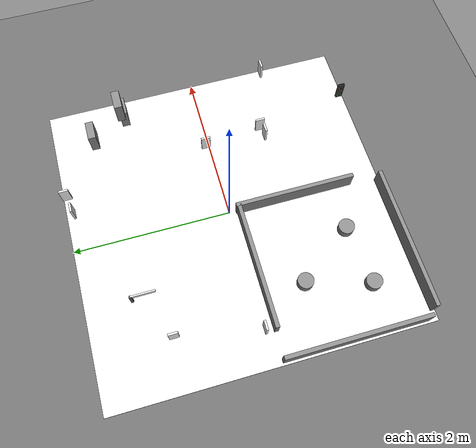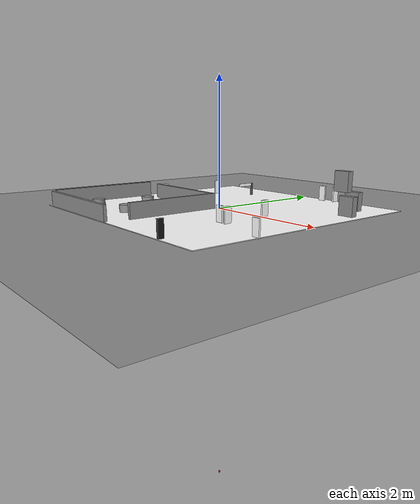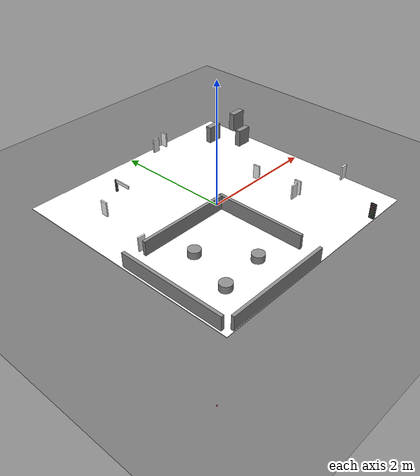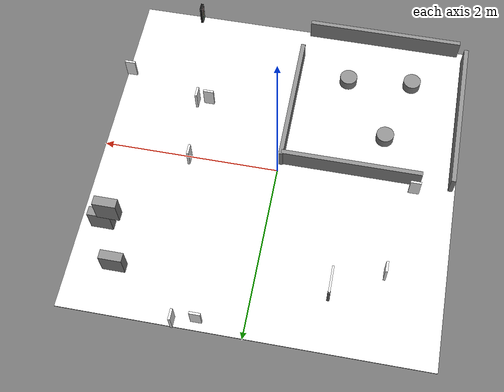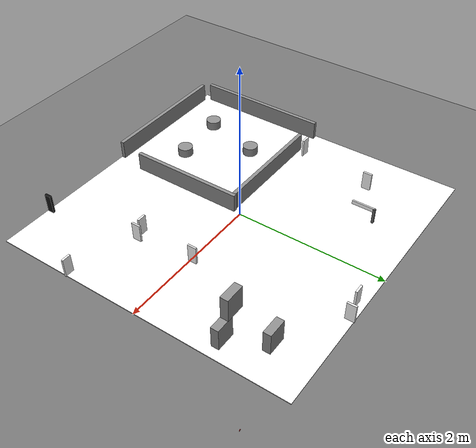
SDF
<?xml version="1.0" ?>
<!-- AutoRace 2023 course for Gazebo Harmonic (gz-sim 8).
     Generated from turtlebot3_autorace_2020.world; do not edit by hand,
     see autorace_sim/scripts/gen_world.py. -->
<sdf version="1.10">
  <world name="autorace">

    <physics name="1ms" type="ignored">
      <max_step_size>0.001</max_step_size>
      <real_time_factor>1.0</real_time_factor>
    </physics>

    <plugin filename="gz-sim-physics-system"
            name="gz::sim::systems::Physics"/>
    <plugin filename="gz-sim-user-commands-system"
            name="gz::sim::systems::UserCommands"/>
    <plugin filename="gz-sim-scene-broadcaster-system"
            name="gz::sim::systems::SceneBroadcaster"/>
    <plugin filename="gz-sim-sensors-system"
            name="gz::sim::systems::Sensors">
      <render_engine>ogre2</render_engine>
    </plugin>
    <plugin filename="gz-sim-contact-system"
            name="gz::sim::systems::Contact"/>
    <plugin filename="gz-sim-imu-system"
            name="gz::sim::systems::Imu"/>

    <scene>
      <ambient>0.85 0.85 0.85 1</ambient>
      <background>0.7 0.7 0.7 1</background>
      <shadows>false</shadows>
      <grid>false</grid>
    </scene>

    <light type="directional" name="sun">
      <cast_shadows>false</cast_shadows>
      <pose>0 0 10 0 0 0</pose>
      <diffuse>0.9 0.9 0.9 1</diffuse>
      <specular>0.2 0.2 0.2 1</specular>
      <direction>-0.3 0.2 -0.9</direction>
    </light>

    <model name="ground_plane">
      <static>true</static>
      <link name="link">
        <collision name="collision">
          <geometry><plane><normal>0 0 1</normal><size>20 20</size></plane></geometry>
        </collision>
        <visual name="visual">
          <geometry><plane><normal>0 0 1</normal><size>20 20</size></plane></geometry>
          <material>
            <ambient>0.3 0.3 0.3 1</ambient>
            <diffuse>0.35 0.35 0.35 1</diffuse>
          </material>
        </visual>
      </link>
    </model>

    <!-- course -->
    <include>
      <uri>model://autorace_course</uri>
      <name>autorace_course</name>
      <pose>0 0 0 0 0 -3.14</pose>
    </include>
    <!-- traffic_bar -->
    <include>
      <uri>model://autorace_level_bar</uri>
      <name>autorace_level_bar</name>
      <pose>-0.8 1.26 0 0 0 -1.57</pose>
    </include>
    <!-- traffic_light -->
    <include>
      <uri>model://autorace_traffic_light</uri>
      <name>autorace_traffic_light</name>
      <pose>1.3 -1.95 0.13 0 0 -1.57</pose>
    </include>
    <!-- traffic_parking -->
    <include>
      <uri>model://autorace_sign_parking</uri>
      <name>autorace_sign_parking</name>
      <pose>0.74 1.95 0.13 0 0 -1.57</pose>
    </include>
    <!-- traffic_tunnel -->
    <include>
      <uri>model://autorace_sign_tunnel</uri>
      <name>autorace_sign_tunnel</name>
      <pose>-1.544 0.00 0.125 0 0 0</pose>
    </include>
    <!-- traffic_stop -->
    <include>
      <uri>model://autorace_sign_stop</uri>
      <name>autorace_sign_stop</name>
      <pose>-1.35 1.04 0.125 0 -0 -1.57</pose>
    </include>
    <!-- traffic_pl_left -->
    <include>
      <uri>model://autorace_sign_pl_left</uri>
      <name>autorace_sign_pl_left</name>
      <pose>0.50 1.90 0.13 0 0 0</pose>
    </include>
    <!-- traffic_construction -->
    <include>
      <uri>model://autorace_sign_construction</uri>
      <name>autorace_sign_construction</name>
      <pose>1.0 0.04 0.125 0 -0 -1.57</pose>
    </include>
    <!-- traffic_intersection -->
    <include>
      <uri>model://autorace_sign_intersection</uri>
      <name>autorace_sign_intersection</name>
      <pose>1.95 -1.0 0.125 0 -0 0.0</pose>
    </include>
    <!-- traffic_noentry -->
    <include>
      <uri>model://autorace_sign_noentry</uri>
      <name>autorace_sign_noentry</name>
      <pose>0.95 -0.758 0.125 0 -0 0.0</pose>
    </include>
    <!-- traffic_right -->
    <include>
      <uri>model://autorace_sign_right</uri>
      <name>autorace_sign_right</name>
      <pose>1.08 -0.728 0.125 0 -0 -1.57</pose>
    </include>

    <include>
      <uri>model://autorace_lamp_red</uri>
      <name>autorace_lamp_red</name>
      <pose>0 0 -5 0 0 0</pose>
    </include>
    <include>
      <uri>model://autorace_lamp_yellow</uri>
      <name>autorace_lamp_yellow</name>
      <pose>0 0 -5 0 0 0</pose>
    </include>
    <include>
      <uri>model://autorace_lamp_green</uri>
      <name>autorace_lamp_green</name>
      <pose>0 0 -5 0 0 0</pose>
    </include>

    <model name="tunnel_wall">
      <static>true</static>
      <pose>-0.964699 -1.03574 0 0 -0 0</pose>
      <link name="Wall_1">
        <pose>-0.980783 0.049883 0 0 -0 1.5708</pose>
        <collision name="Wall_1_collision">
          <pose>0 0 0.125 0 -0 0</pose>
          <geometry><box><size>1.8 0.05 0.25</size></box></geometry>
        </collision>
        <visual name="Wall_1_visual">
          <pose>0 0 0.125 0 -0 0</pose>
          <geometry><box><size>1.8 0.05 0.25</size></box></geometry>
          <material>
            <ambient>0.25 0.25 0.25 1</ambient>
            <diffuse>0.55 0.55 0.55 1</diffuse>
            <specular>0.05 0.05 0.05 1</specular>
          </material>
        </visual>
      </link>
      <link name="Wall_2">
        <pose>0 -0.935438 0 0 -0 0</pose>
        <collision name="Wall_2_collision">
          <pose>0 0 0.125 0 -0 0</pose>
          <geometry><box><size>1.8 0.05 0.25</size></box></geometry>
        </collision>
        <visual name="Wall_2_visual">
          <pose>0 0 0.125 0 -0 0</pose>
          <geometry><box><size>1.8 0.05 0.25</size></box></geometry>
          <material>
            <ambient>0.25 0.25 0.25 1</ambient>
            <diffuse>0.55 0.55 0.55 1</diffuse>
            <specular>0.05 0.05 0.05 1</specular>
          </material>
        </visual>
      </link>
      <link name="Wall_3">
        <pose>0.943396 0.183669 0 0 -0 1.5708</pose>
        <collision name="Wall_3_collision">
          <pose>0 0 0.125 0 -0 0</pose>
          <geometry><box><size>1.53699 0.05 0.25</size></box></geometry>
        </collision>
        <visual name="Wall_3_visual">
          <pose>0 0 0.125 0 -0 0</pose>
          <geometry><box><size>1.53699 0.05 0.25</size></box></geometry>
          <material>
            <ambient>0.25 0.25 0.25 1</ambient>
            <diffuse>0.55 0.55 0.55 1</diffuse>
            <specular>0.05 0.05 0.05 1</specular>
          </material>
        </visual>
      </link>
      <link name="Wall_4">
        <pose>0.15 0.915 0 0 -0 3.14159</pose>
        <collision name="Wall_4_collision">
          <pose>0 0 0.125 0 -0 0</pose>
          <geometry><box><size>1.58 0.05 0.25</size></box></geometry>
        </collision>
        <visual name="Wall_4_visual">
          <pose>0 0 0.125 0 -0 0</pose>
          <geometry><box><size>1.58 0.05 0.25</size></box></geometry>
          <material>
            <ambient>0.25 0.25 0.25 1</ambient>
            <diffuse>0.55 0.55 0.55 1</diffuse>
            <specular>0.05 0.05 0.05 1</specular>
          </material>
        </visual>
      </link>
    </model>
    <model name="tunnel_obstacle">
      <static>true</static>
      <pose>-1.04145 -1.12671 0 0 -0 0</pose>
      <link name="obstacle_1">
        <pose>0.42322 -0.212034 0.0 0 -0 0</pose>
        <collision name="obstacle_1_collision">
          <pose>0 0 0 0 -0 0</pose>
          <geometry><cylinder><radius>0.1</radius><length>0.25</length></cylinder></geometry>
        </collision>
        <visual name="obstacle_1_visual">
          <pose>0 0 0 0 -0 0</pose>
          <geometry><cylinder><radius>0.1</radius><length>0.25</length></cylinder></geometry>
          <material>
            <ambient>0.25 0.25 0.25 1</ambient>
            <diffuse>0.55 0.55 0.55 1</diffuse>
            <specular>0.05 0.05 0.05 1</specular>
          </material>
        </visual>
      </link>
      <link name="obstacle_2">
        <pose>-0.323729 -0.287563 0.0 0 -0 0</pose>
        <collision name="obstacle_2_collision">
          <pose>0 0 0 0 -0 0</pose>
          <geometry><cylinder><radius>0.1</radius><length>0.25</length></cylinder></geometry>
        </collision>
        <visual name="obstacle_2_visual">
          <pose>0 0 0 0 -0 0</pose>
          <geometry><cylinder><radius>0.1</radius><length>0.25</length></cylinder></geometry>
          <material>
            <ambient>0.25 0.25 0.25 1</ambient>
            <diffuse>0.55 0.55 0.55 1</diffuse>
            <specular>0.05 0.05 0.05 1</specular>
          </material>
        </visual>
      </link>
      <link name="obstacle_3">
        <pose>-0.099492 0.499594 0.0 0 -0 0</pose>
        <collision name="obstacle_3_collision">
          <pose>0 0 0 0 -0 0</pose>
          <geometry><cylinder><radius>0.1</radius><length>0.25</length></cylinder></geometry>
        </collision>
        <visual name="obstacle_3_visual">
          <pose>0 0 0 0 -0 0</pose>
          <geometry><cylinder><radius>0.1</radius><length>0.25</length></cylinder></geometry>
          <material>
            <ambient>0.25 0.25 0.25 1</ambient>
            <diffuse>0.55 0.55 0.55 1</diffuse>
            <specular>0.05 0.05 0.05 1</specular>
          </material>
        </visual>
      </link>
    </model>
    <model name="barrier_1">
      <static>true</static>
      <pose>1.61222 1.02778 0.5 0 -0 0</pose>
      <link name="link">
        <pose>0 0 0 0 -0 0</pose>
        <collision name="link_collision">
          <pose>0 0 0 0 -0 0</pose>
          <geometry><box><size>0.25 0.1 0.3</size></box></geometry>
        </collision>
        <visual name="link_visual">
          <pose>0 0 0 0 -0 0</pose>
          <geometry><box><size>0.25 0.1 0.3</size></box></geometry>
          <material>
            <ambient>0.25 0.25 0.25 1</ambient>
            <diffuse>0.55 0.55 0.55 1</diffuse>
            <specular>0.05 0.05 0.05 1</specular>
          </material>
        </visual>
      </link>
    </model>
    <model name="barrier_2">
      <static>true</static>
      <pose>1.74483 0.998451 0.15 0 -0 0</pose>
      <link name="link">
        <pose>0 0 0 0 -0 0</pose>
        <collision name="link_collision">
          <pose>0 0 0 0 -0 0</pose>
          <geometry><box><size>0.25 0.1 0.3</size></box></geometry>
        </collision>
        <visual name="link_visual">
          <pose>0 0 0 0 -0 0</pose>
          <geometry><box><size>0.25 0.1 0.3</size></box></geometry>
          <material>
            <ambient>0.25 0.25 0.25 1</ambient>
            <diffuse>0.55 0.55 0.55 1</diffuse>
            <specular>0.05 0.05 0.05 1</specular>
          </material>
        </visual>
      </link>
    </model>
    <model name="barrier_3">
      <static>true</static>
      <pose>1.49021 1.46167 0.15 0 -0 0</pose>
      <link name="link">
        <pose>0 0 0 0 -0 0</pose>
        <collision name="link_collision">
          <pose>0 0 0 0 -0 0</pose>
          <geometry><box><size>0.25 0.1 0.3</size></box></geometry>
        </collision>
        <visual name="link_visual">
          <pose>0 0 0 0 -0 0</pose>
          <geometry><box><size>0.25 0.1 0.3</size></box></geometry>
          <material>
            <ambient>0.25 0.25 0.25 1</ambient>
            <diffuse>0.55 0.55 0.55 1</diffuse>
            <specular>0.05 0.05 0.05 1</specular>
          </material>
        </visual>
      </link>
    </model>

  </world>
</sdf>

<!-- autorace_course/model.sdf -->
<sdf version="1.10">
  <model name="autorace_course">
    <static>true</static>
    <link name="course_link">
      <collision name="course_collision">
        <pose>0 0 0.005 0 0 0</pose>
        <geometry>
          <box><size>4 4 0.01</size></box>
        </geometry>
        <surface>
          <friction>
            <ode>
              <mu>100</mu>
              <mu2>50</mu2>
            </ode>
          </friction>
        </surface>
      </collision>
      <visual name="course_visual">
        <pose>0 0 0.005 0 0 0</pose>
        <cast_shadows>false</cast_shadows>
        <geometry>
	        <box><size>4 4 0.01</size></box>
        </geometry>
	              <material>
          <diffuse>1 1 1 1</diffuse>
          <specular>0.1 0.1 0.1 1</specular>
          <pbr>
            <metal>
              <albedo_map>model://autorace_course/materials/textures/course.png</albedo_map>
              <metalness>0.0</metalness>
              <roughness>0.9</roughness>
            </metal>
          </pbr>
        </material>
      </visual>
    </link>
  </model>
</sdf>

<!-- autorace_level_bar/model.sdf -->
<sdf version="1.10">
  <model name="autorace_level_bar">
    <link name="post">
      <pose>-0.16 0 0.11 0 0 0</pose>
      <collision name="collision">
        <geometry><box><size>0.03 0.03 0.22</size></box></geometry>
      </collision>
      <visual name="visual">
        <geometry><box><size>0.03 0.03 0.22</size></box></geometry>
        <material>
          <ambient>0.3 0.3 0.3 1</ambient>
          <diffuse>0.4 0.4 0.4 1</diffuse>
        </material>
      </visual>
    </link>

    <joint name="post_fixed" type="fixed">
      <parent>world</parent>
      <child>post</child>
    </joint>

    <link name="bar">
      <!-- Link origin sits on the hinge; the bar itself extends towards +x. -->
      <pose>-0.16 0 0.2 0 0 0</pose>
      <inertial>
        <pose>0.15 0 0 0 0 0</pose>
        <mass>0.05</mass>
        <inertia><ixx>1e-4</ixx><iyy>1e-3</iyy><izz>1e-3</izz>
          <ixy>0</ixy><ixz>0</ixz><iyz>0</iyz></inertia>
      </inertial>
      <collision name="collision">
        <pose>0.15 0 0 0 0 0</pose>
        <geometry><box><size>0.3 0.02 0.05</size></box></geometry>
      </collision>
      <visual name="visual">
        <pose>0.15 0 0 0 0 0</pose>
        <geometry><box><size>0.3 0.02 0.05</size></box></geometry>
        <material>
          <diffuse>1 1 1 1</diffuse>
          <pbr>
            <metal>
              <albedo_map>model://autorace_level_bar/materials/textures/traffic_bar.png</albedo_map>
              <metalness>0.0</metalness>
              <roughness>0.9</roughness>
            </metal>
          </pbr>
        </material>
      </visual>
    </link>

    <joint name="bar_joint" type="revolute">
      <parent>post</parent>
      <child>bar</child>
      <axis>
        <xyz>0 -1 0</xyz>
        <limit><lower>0.0</lower><upper>1.5708</upper>
          <effort>10</effort><velocity>2.0</velocity></limit>
        <dynamics><damping>0.2</damping></dynamics>
      </axis>
    </joint>

    <plugin filename="gz-sim-joint-position-controller-system"
            name="gz::sim::systems::JointPositionController">
      <joint_name>bar_joint</joint_name>
      <topic>/level_bar/cmd</topic>
      <p_gain>5.0</p_gain>
      <i_gain>0.05</i_gain>
      <d_gain>0.5</d_gain>
    </plugin>
  </model>
</sdf>

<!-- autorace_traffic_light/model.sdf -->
<sdf version="1.10">
  <model name="autorace_traffic_light">
    <static>true</static>
    <link name="housing">
      <collision name="collision">
        <geometry>
          <box><size>0.09 0.03 0.26</size></box>
        </geometry>
      </collision>
      <visual name="visual">
        <geometry>
          <box><size>0.09 0.03 0.26</size></box>
        </geometry>
        <material>
          <ambient>0.05 0.05 0.05 1</ambient>
          <diffuse>0.08 0.08 0.08 1</diffuse>
          <specular>0.02 0.02 0.02 1</specular>
        </material>
      </visual>

      <!-- Dark sockets. The lit lamp models sit just in front of these. -->
      <visual name="socket_red">
        <pose>0 -0.016 0.075 1.5708 0 0</pose>
        <geometry><cylinder><radius>0.026</radius><length>0.002</length></cylinder></geometry>
        <material>
          <ambient>0.12 0.02 0.02 1</ambient>
          <diffuse>0.15 0.02 0.02 1</diffuse>
        </material>
      </visual>
      <visual name="socket_yellow">
        <pose>0 -0.016 0.0 1.5708 0 0</pose>
        <geometry><cylinder><radius>0.026</radius><length>0.002</length></cylinder></geometry>
        <material>
          <ambient>0.13 0.11 0.02 1</ambient>
          <diffuse>0.16 0.14 0.02 1</diffuse>
        </material>
      </visual>
      <visual name="socket_green">
        <pose>0 -0.016 -0.075 1.5708 0 0</pose>
        <geometry><cylinder><radius>0.026</radius><length>0.002</length></cylinder></geometry>
        <material>
          <ambient>0.02 0.12 0.06 1</ambient>
          <diffuse>0.02 0.15 0.07 1</diffuse>
        </material>
      </visual>
    </link>
  </model>
</sdf>

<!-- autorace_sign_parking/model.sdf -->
<sdf version="1.10">
  <model name="autorace_sign_parking">
    <static>true</static>
    <link name="box">
      <pose>0 0 0 0 0 0</pose>
      <collision name="collision">
        <geometry>
          <box>
            <size>0.12 0.025 0.25</size>
          </box>
        </geometry>
      </collision>
      <visual name="visual">
        <geometry>
          <box>
            <size>0.12 0.025 0.25</size>
          </box>
        </geometry>
                <material>
          <diffuse>1 1 1 1</diffuse>
          <specular>0.1 0.1 0.1 1</specular>
          <pbr>
            <metal>
              <albedo_map>model://autorace_sign_parking/materials/textures/traffic_parking.png</albedo_map>
              <metalness>0.0</metalness>
              <roughness>0.9</roughness>
            </metal>
          </pbr>
        </material>
      </visual>
    </link>
  </model>
</sdf>

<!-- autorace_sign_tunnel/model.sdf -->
<sdf version="1.10">
  <model name="autorace_sign_tunnel">
    <pose>0 0 0.125 0 0 0</pose>
    <link name="box">
      <pose>0 0 0 0 0 0</pose>
      <collision name="collision">
        <geometry>
          <box>
            <size>0.12 0.025 0.25</size>
          </box>
        </geometry>
      </collision>
      <visual name="visual">
        <geometry>
          <box>
            <size>0.12 0.025 0.25</size>
          </box>
        </geometry>
                <material>
          <diffuse>1 1 1 1</diffuse>
          <specular>0.1 0.1 0.1 1</specular>
          <pbr>
            <metal>
              <albedo_map>model://autorace_sign_tunnel/materials/textures/tunnel.png</albedo_map>
              <metalness>0.0</metalness>
              <roughness>0.9</roughness>
            </metal>
          </pbr>
        </material>
      </visual>
    </link>
      <static>true</static>
  </model>
</sdf>

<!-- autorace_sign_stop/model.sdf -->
<sdf version="1.10">
  <model name="autorace_sign_stop">
    <static>true</static>
    <link name="box">
      <pose>0 0 0 0 0 0</pose>
      <collision name="collision">
        <geometry>
          <box>
            <size>0.12 0.025 0.25</size>
          </box>
        </geometry>
      </collision>
      <visual name="visual">
        <geometry>
          <box>
            <size>0.12 0.025 0.25</size>
          </box>
        </geometry>
                <material>
          <diffuse>1 1 1 1</diffuse>
          <specular>0.1 0.1 0.1 1</specular>
          <pbr>
            <metal>
              <albedo_map>model://autorace_sign_stop/materials/textures/traffic_stop.png</albedo_map>
              <metalness>0.0</metalness>
              <roughness>0.9</roughness>
            </metal>
          </pbr>
        </material>
      </visual>
    </link>
  </model>
</sdf>

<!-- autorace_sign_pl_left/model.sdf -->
<sdf version="1.10">
  <model name="autorace_sign_pl_left">
    <static>true</static>
    <link name="box">
      <pose>0 0 0 0 0 0</pose>
      <collision name="collision">
        <geometry>
          <box>
            <size>0.12 0.025 0.25</size>
          </box>
        </geometry>
      </collision>
      <visual name="visual">
        <geometry>
          <box>
            <size>0.12 0.025 0.25</size>
          </box>
        </geometry>
                <material>
          <diffuse>1 1 1 1</diffuse>
          <specular>0.1 0.1 0.1 1</specular>
          <pbr>
            <metal>
              <albedo_map>model://autorace_sign_pl_left/materials/textures/traffic_pl_left.png</albedo_map>
              <metalness>0.0</metalness>
              <roughness>0.9</roughness>
            </metal>
          </pbr>
        </material>
      </visual>
    </link>
  </model>
</sdf>

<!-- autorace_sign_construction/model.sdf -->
<sdf version="1.10">
  <model name="autorace_sign_construction">
    <static>true</static>
    <link name="box">
      <pose>0 0 0 0 0 0</pose>
      <collision name="collision">
        <geometry>
          <box>
            <size>0.12 0.025 0.25</size>
          </box>
        </geometry>
      </collision>
      <visual name="visual">
        <geometry>
          <box>
            <size>0.12 0.025 0.25</size>
          </box>
        </geometry>
                <material>
          <diffuse>1 1 1 1</diffuse>
          <specular>0.1 0.1 0.1 1</specular>
          <pbr>
            <metal>
              <albedo_map>model://autorace_sign_construction/materials/textures/traffic_construction.png</albedo_map>
              <metalness>0.0</metalness>
              <roughness>0.9</roughness>
            </metal>
          </pbr>
        </material>
      </visual>
    </link>
  </model>
</sdf>

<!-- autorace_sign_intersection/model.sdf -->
<sdf version="1.10">
  <model name="autorace_sign_intersection">
    <static>true</static>
    <link name="box">
      <pose>0 0 0 0 0 0</pose>
      <collision name="collision">
        <geometry>
          <box>
            <size>0.12 0.025 0.25</size>
          </box>
        </geometry>
      </collision>
      <visual name="visual">
        <geometry>
          <box>
            <size>0.12 0.025 0.25</size>
          </box>
        </geometry>
                <material>
          <diffuse>1 1 1 1</diffuse>
          <specular>0.1 0.1 0.1 1</specular>
          <pbr>
            <metal>
              <albedo_map>model://autorace_sign_intersection/materials/textures/traffic_intersection.png</albedo_map>
              <metalness>0.0</metalness>
              <roughness>0.9</roughness>
            </metal>
          </pbr>
        </material>
      </visual>
    </link>
  </model>
</sdf>

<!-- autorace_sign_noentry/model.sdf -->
<sdf version="1.10">
  <model name="autorace_sign_noentry">
    <static>true</static>
    <link name="box">
      <pose>0 0 0 0 0 0</pose>
      <collision name="collision">
        <geometry>
          <box>
            <size>0.12 0.025 0.25</size>
          </box>
        </geometry>
      </collision>
      <visual name="visual">
        <geometry>
          <box>
            <size>0.12 0.025 0.25</size>
          </box>
        </geometry>
                <material>
          <diffuse>1 1 1 1</diffuse>
          <specular>0.1 0.1 0.1 1</specular>
          <pbr>
            <metal>
              <albedo_map>model://autorace_sign_noentry/materials/textures/traffic_noentry.png</albedo_map>
              <metalness>0.0</metalness>
              <roughness>0.9</roughness>
            </metal>
          </pbr>
        </material>
      </visual>
    </link>
  </model>
</sdf>

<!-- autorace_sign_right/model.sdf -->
<sdf version="1.10">
  <model name="autorace_sign_right">
    <static>true</static>
    <link name="box">
      <pose>0 0 0 0 0 0</pose>
      <collision name="collision">
        <geometry>
          <box>
            <size>0.12 0.025 0.25</size>
          </box>
        </geometry>
      </collision>
      <visual name="visual">
        <geometry>
          <box>
            <size>0.12 0.025 0.25</size>
          </box>
        </geometry>
                <material>
          <diffuse>1 1 1 1</diffuse>
          <specular>0.1 0.1 0.1 1</specular>
          <pbr>
            <metal>
              <albedo_map>model://autorace_sign_right/materials/textures/traffic_right.png</albedo_map>
              <metalness>0.0</metalness>
              <roughness>0.9</roughness>
            </metal>
          </pbr>
        </material>
      </visual>
    </link>
  </model>
</sdf>

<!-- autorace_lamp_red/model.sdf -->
<sdf version="1.10">
  <model name="autorace_lamp_red">
    <!-- Not static: set_pose has to be able to teleport it. No collision and
         no gravity so it never disturbs the robot. -->
    <static>false</static>
    <link name="lamp">
      <gravity>false</gravity>
      <kinematic>true</kinematic>
      <inertial>
        <mass>0.001</mass>
        <inertia><ixx>1e-6</ixx><iyy>1e-6</iyy><izz>1e-6</izz>
          <ixy>0</ixy><ixz>0</ixz><iyz>0</iyz></inertia>
      </inertial>
      <visual name="visual">
        <pose>0 0 0 1.5708 0 0</pose>
        <geometry><cylinder><radius>0.024</radius><length>0.004</length></cylinder></geometry>
        <material>
          <ambient>1.0 0.05 0.05 1</ambient>
          <diffuse>1.0 0.05 0.05 1</diffuse>
          <specular>0.2 0.2 0.2 1</specular>
          <emissive>1.0 0.05 0.05 1</emissive>
        </material>
      </visual>
    </link>
  </model>
</sdf>

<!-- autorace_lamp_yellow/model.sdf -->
<sdf version="1.10">
  <model name="autorace_lamp_yellow">
    <!-- Not static: set_pose has to be able to teleport it. No collision and
         no gravity so it never disturbs the robot. -->
    <static>false</static>
    <link name="lamp">
      <gravity>false</gravity>
      <kinematic>true</kinematic>
      <inertial>
        <mass>0.001</mass>
        <inertia><ixx>1e-6</ixx><iyy>1e-6</iyy><izz>1e-6</izz>
          <ixy>0</ixy><ixz>0</ixz><iyz>0</iyz></inertia>
      </inertial>
      <visual name="visual">
        <pose>0 0 0 1.5708 0 0</pose>
        <geometry><cylinder><radius>0.024</radius><length>0.004</length></cylinder></geometry>
        <material>
          <ambient>1.0 0.85 0.05 1</ambient>
          <diffuse>1.0 0.85 0.05 1</diffuse>
          <specular>0.2 0.2 0.2 1</specular>
          <emissive>1.0 0.85 0.05 1</emissive>
        </material>
      </visual>
    </link>
  </model>
</sdf>

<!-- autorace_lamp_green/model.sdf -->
<sdf version="1.10">
  <model name="autorace_lamp_green">
    <!-- Not static: set_pose has to be able to teleport it. No collision and
         no gravity so it never disturbs the robot. -->
    <static>false</static>
    <link name="lamp">
      <gravity>false</gravity>
      <kinematic>true</kinematic>
      <inertial>
        <mass>0.001</mass>
        <inertia><ixx>1e-6</ixx><iyy>1e-6</iyy><izz>1e-6</izz>
          <ixy>0</ixy><ixz>0</ixz><iyz>0</iyz></inertia>
      </inertial>
      <visual name="visual">
        <pose>0 0 0 1.5708 0 0</pose>
        <geometry><cylinder><radius>0.024</radius><length>0.004</length></cylinder></geometry>
        <material>
          <ambient>0.05 1.0 0.2 1</ambient>
          <diffuse>0.05 1.0 0.2 1</diffuse>
          <specular>0.2 0.2 0.2 1</specular>
          <emissive>0.05 1.0 0.2 1</emissive>
        </material>
      </visual>
    </link>
  </model>
</sdf>
